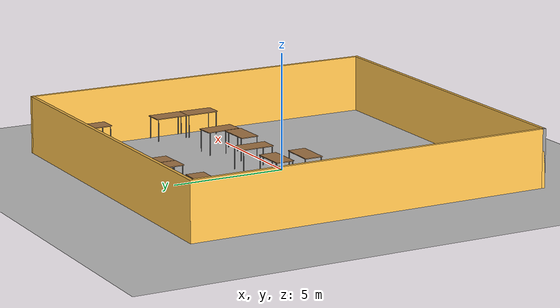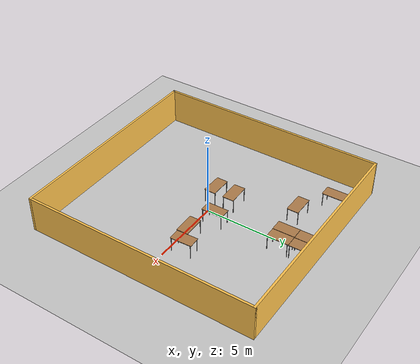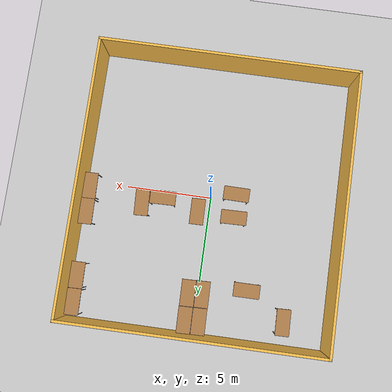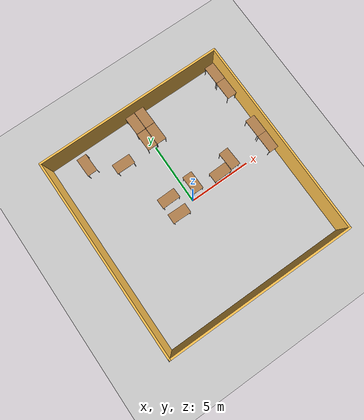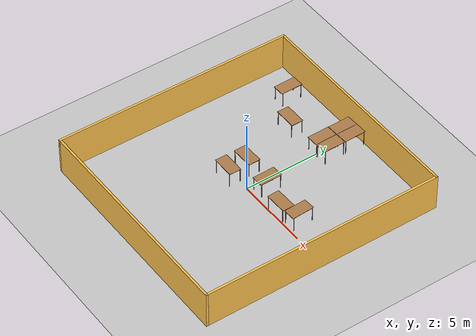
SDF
<sdf version="1.7">
 <world name="default">
  <model name="ground_plane">
   <static>1</static>
   <link name="link">
    <collision name="collision">
     <geometry><plane><normal>0 0 1</normal><size>100 100</size></plane></geometry>
     <surface>
      <contact><collide_bitmask>65535</collide_bitmask></contact>
      <friction><ode><mu>100</mu><mu2>50</mu2></ode></friction>
     </surface>
    </collision>
    <visual name="visual">
     <cast_shadows>0</cast_shadows>
     <geometry><plane><normal>0 0 1</normal><size>100 100</size></plane></geometry>
     <material>
      <script><uri>file://media/materials/scripts/gazebo.material</uri><name>Gazebo/Grey</name></script>
     </material>
    </visual>
   </link>
  </model>
  <model name="RRC">
   <link name="Wall_0">
    <collision name="Wall_0_Collision">
     <geometry><box><size>16.15 0.15 2.5</size></box></geometry>
     <pose>0 0 1.25 0 -0 0</pose>
    </collision>
    <visual name="Wall_0_Visual">
     <pose>0 0 1.25 0 -0 0</pose>
     <geometry><box><size>16.15 0.15 2.5</size></box></geometry>
     <material>
      <script><uri>file://media/materials/scripts/gazebo.material</uri><name>Gazebo/Grey</name></script>
      <ambient>1 0.764706 0.305882 1</ambient>
     </material>
     <meta><layer>0</layer></meta>
    </visual>
    <pose>-7.5 0 0 0 -0 1.5708</pose>
   </link>
   <link name="Wall_1">
    <collision name="Wall_1_Collision">
     <geometry><box><size>15.15 0.15 2.5</size></box></geometry>
     <pose>0 0 1.25 0 -0 0</pose>
    </collision>
    <visual name="Wall_1_Visual">
     <pose>0 0 1.25 0 -0 0</pose>
     <geometry><box><size>15.15 0.15 2.5</size></box></geometry>
     <material>
      <script><uri>file://media/materials/scripts/gazebo.material</uri><name>Gazebo/Grey</name></script>
      <ambient>1 0.764706 0.305882 1</ambient>
     </material>
     <meta><layer>0</layer></meta>
    </visual>
    <pose>0 8 0 0 -0 0</pose>
   </link>
   <link name="Wall_2">
    <collision name="Wall_2_Collision">
     <geometry><box><size>16.15 0.15 2.5</size></box></geometry>
     <pose>0 0 1.25 0 -0 0</pose>
    </collision>
    <visual name="Wall_2_Visual">
     <pose>0 0 1.25 0 -0 0</pose>
     <geometry><box><size>16.15 0.15 2.5</size></box></geometry>
     <material>
      <script><uri>file://media/materials/scripts/gazebo.material</uri><name>Gazebo/Grey</name></script>
      <ambient>1 0.764706 0.305882 1</ambient>
     </material>
     <meta><layer>0</layer></meta>
    </visual>
    <pose>7.5 0 0 0 -0 -1.5708</pose>
   </link>
   <link name="Wall_3">
    <collision name="Wall_3_Collision">
     <geometry><box><size>15.15 0.15 2.5</size></box></geometry>
     <pose>0 0 1.25 0 -0 0</pose>
    </collision>
    <visual name="Wall_3_Visual">
     <pose>0 0 1.25 0 -0 0</pose>
     <geometry><box><size>15.15 0.15 2.5</size></box></geometry>
     <material>
      <script><uri>file://media/materials/scripts/gazebo.material</uri><name>Gazebo/Grey</name></script>
      <ambient>1 0.764706 0.305882 1</ambient>
     </material>
     <meta><layer>0</layer></meta>
    </visual>
    <pose>0 -8 0 0 -0 3.14159</pose>
   </link>
   <link name="Wall_4">
    <collision name="Wall_4_Collision">
     <geometry><box><size>0.15 0.15 2.5</size></box></geometry>
     <pose>0 0 1.25 0 -0 0</pose>
    </collision>
    <visual name="Wall_4_Visual">
     <pose>0 0 1.25 0 -0 0</pose>
     <geometry><box><size>0.15 0.15 2.5</size></box></geometry>
     <material>
      <script><uri>file://media/materials/scripts/gazebo.material</uri><name>Gazebo/Grey</name></script>
      <ambient>1 1 1 1</ambient>
     </material>
     <meta><layer>0</layer></meta>
    </visual>
    <pose>-7.5 -8 0 0 -0 0</pose>
   </link>
   <static>1</static>
  </model>
  <model name="table_clone_0">
   <static>1</static>
   <link name="link">
    <collision name="surface">
     <pose>0 0 1 0 -0 0</pose>
     <geometry><box><size>1.5 0.8 0.03</size></box></geometry>
     <surface><friction><ode><mu>0.6</mu><mu2>0.6</mu2></ode></friction></surface>
    </collision>
    <visual name="visual1">
     <pose>0 0 1 0 -0 0</pose>
     <geometry><box><size>1.5 0.8 0.03</size></box></geometry>
     <material>
      <script><uri>file://media/materials/scripts/gazebo.material</uri><name>Gazebo/Wood</name></script>
     </material>
    </visual>
    <collision name="front_left_leg">
     <pose>0.68 0.38 0.5 0 -0 0</pose>
     <geometry><cylinder><radius>0.02</radius><length>1</length></cylinder></geometry>
    </collision>
    <visual name="front_left_leg">
     <pose>0.68 0.38 0.5 0 -0 0</pose>
     <geometry><cylinder><radius>0.02</radius><length>1</length></cylinder></geometry>
     <material>
      <script><uri>file://media/materials/scripts/gazebo.material</uri><name>Gazebo/Grey</name></script>
     </material>
    </visual>
    <collision name="front_right_leg">
     <pose>0.68 -0.38 0.5 0 -0 0</pose>
     <geometry><cylinder><radius>0.02</radius><length>1</length></cylinder></geometry>
    </collision>
    <visual name="front_right_leg">
     <pose>0.68 -0.38 0.5 0 -0 0</pose>
     <geometry><cylinder><radius>0.02</radius><length>1</length></cylinder></geometry>
     <material>
      <script><uri>file://media/materials/scripts/gazebo.material</uri><name>Gazebo/Grey</name></script>
     </material>
    </visual>
    <collision name="back_right_leg">
     <pose>-0.68 -0.38 0.5 0 -0 0</pose>
     <geometry><cylinder><radius>0.02</radius><length>1</length></cylinder></geometry>
    </collision>
    <visual name="back_right_leg">
     <pose>-0.68 -0.38 0.5 0 -0 0</pose>
     <geometry><cylinder><radius>0.02</radius><length>1</length></cylinder></geometry>
     <material>
      <script><uri>file://media/materials/scripts/gazebo.material</uri><name>Gazebo/Grey</name></script>
     </material>
    </visual>
    <collision name="back_left_leg">
     <pose>-0.68 0.38 0.5 0 -0 0</pose>
     <geometry><cylinder><radius>0.02</radius><length>1</length></cylinder></geometry>
    </collision>
    <visual name="back_left_leg">
     <pose>-0.68 0.38 0.5 0 -0 0</pose>
     <geometry><cylinder><radius>0.02</radius><length>1</length></cylinder></geometry>
     <material>
      <script><uri>file://media/materials/scripts/gazebo.material</uri><name>Gazebo/Grey</name></script>
     </material>
    </visual>
   </link>
   <pose>-2.72057 5.0711 0 0 -0 0</pose>
  </model>
  <model name="table_clone_0_clone_0">
   <static>1</static>
   <link name="link">
    <collision name="surface">
     <pose>0 0 1 0 -0 0</pose>
     <geometry><box><size>1.5 0.8 0.03</size></box></geometry>
     <surface><friction><ode><mu>0.6</mu><mu2>0.6</mu2></ode></friction></surface>
    </collision>
    <visual name="visual1">
     <pose>0 0 1 0 -0 0</pose>
     <geometry><box><size>1.5 0.8 0.03</size></box></geometry>
     <material>
      <script><uri>file://media/materials/scripts/gazebo.material</uri><name>Gazebo/Wood</name></script>
     </material>
    </visual>
    <collision name="front_left_leg">
     <pose>0.68 0.38 0.5 0 -0 0</pose>
     <geometry><cylinder><radius>0.02</radius><length>1</length></cylinder></geometry>
    </collision>
    <visual name="front_left_leg">
     <pose>0.68 0.38 0.5 0 -0 0</pose>
     <geometry><cylinder><radius>0.02</radius><length>1</length></cylinder></geometry>
     <material>
      <script><uri>file://media/materials/scripts/gazebo.material</uri><name>Gazebo/Grey</name></script>
     </material>
    </visual>
    <collision name="front_right_leg">
     <pose>0.68 -0.38 0.5 0 -0 0</pose>
     <geometry><cylinder><radius>0.02</radius><length>1</length></cylinder></geometry>
    </collision>
    <visual name="front_right_leg">
     <pose>0.68 -0.38 0.5 0 -0 0</pose>
     <geometry><cylinder><radius>0.02</radius><length>1</length></cylinder></geometry>
     <material>
      <script><uri>file://media/materials/scripts/gazebo.material</uri><name>Gazebo/Grey</name></script>
     </material>
    </visual>
    <collision name="back_right_leg">
     <pose>-0.68 -0.38 0.5 0 -0 0</pose>
     <geometry><cylinder><radius>0.02</radius><length>1</length></cylinder></geometry>
    </collision>
    <visual name="back_right_leg">
     <pose>-0.68 -0.38 0.5 0 -0 0</pose>
     <geometry><cylinder><radius>0.02</radius><length>1</length></cylinder></geometry>
     <material>
      <script><uri>file://media/materials/scripts/gazebo.material</uri><name>Gazebo/Grey</name></script>
     </material>
    </visual>
    <collision name="back_left_leg">
     <pose>-0.68 0.38 0.5 0 -0 0</pose>
     <geometry><cylinder><radius>0.02</radius><length>1</length></cylinder></geometry>
    </collision>
    <visual name="back_left_leg">
     <pose>-0.68 0.38 0.5 0 -0 0</pose>
     <geometry><cylinder><radius>0.02</radius><length>1</length></cylinder></geometry>
     <material>
      <script><uri>file://media/materials/scripts/gazebo.material</uri><name>Gazebo/Grey</name></script>
     </material>
    </visual>
   </link>
   <pose>-4.97262 6.55188 0 0 -0 1.58908</pose>
  </model>
  <model name="table_clone_0_clone_clone">
   <static>1</static>
   <link name="link">
    <collision name="surface">
     <pose>0 0 1 0 -0 0</pose>
     <geometry><box><size>1.5 0.8 0.03</size></box></geometry>
     <surface><friction><ode><mu>0.6</mu><mu2>0.6</mu2></ode></friction></surface>
    </collision>
    <visual name="visual1">
     <pose>0 0 1 0 -0 0</pose>
     <geometry><box><size>1.5 0.8 0.03</size></box></geometry>
     <material>
      <script><uri>file://media/materials/scripts/gazebo.material</uri><name>Gazebo/Wood</name></script>
     </material>
    </visual>
    <collision name="front_left_leg">
     <pose>0.68 0.38 0.5 0 -0 0</pose>
     <geometry><cylinder><radius>0.02</radius><length>1</length></cylinder></geometry>
    </collision>
    <visual name="front_left_leg">
     <pose>0.68 0.38 0.5 0 -0 0</pose>
     <geometry><cylinder><radius>0.02</radius><length>1</length></cylinder></geometry>
     <material>
      <script><uri>file://media/materials/scripts/gazebo.material</uri><name>Gazebo/Grey</name></script>
     </material>
    </visual>
    <collision name="front_right_leg">
     <pose>0.68 -0.38 0.5 0 -0 0</pose>
     <geometry><cylinder><radius>0.02</radius><length>1</length></cylinder></geometry>
    </collision>
    <visual name="front_right_leg">
     <pose>0.68 -0.38 0.5 0 -0 0</pose>
     <geometry><cylinder><radius>0.02</radius><length>1</length></cylinder></geometry>
     <material>
      <script><uri>file://media/materials/scripts/gazebo.material</uri><name>Gazebo/Grey</name></script>
     </material>
    </visual>
    <collision name="back_right_leg">
     <pose>-0.68 -0.38 0.5 0 -0 0</pose>
     <geometry><cylinder><radius>0.02</radius><length>1</length></cylinder></geometry>
    </collision>
    <visual name="back_right_leg">
     <pose>-0.68 -0.38 0.5 0 -0 0</pose>
     <geometry><cylinder><radius>0.02</radius><length>1</length></cylinder></geometry>
     <material>
      <script><uri>file://media/materials/scripts/gazebo.material</uri><name>Gazebo/Grey</name></script>
     </material>
    </visual>
    <collision name="back_left_leg">
     <pose>-0.68 0.38 0.5 0 -0 0</pose>
     <geometry><cylinder><radius>0.02</radius><length>1</length></cylinder></geometry>
    </collision>
    <visual name="back_left_leg">
     <pose>-0.68 0.38 0.5 0 -0 0</pose>
     <geometry><cylinder><radius>0.02</radius><length>1</length></cylinder></geometry>
     <material>
      <script><uri>file://media/materials/scripts/gazebo.material</uri><name>Gazebo/Grey</name></script>
     </material>
    </visual>
   </link>
   <pose>-0.26541 7.13607 0 0 -0 1.58908</pose>
  </model>
  <model name="table_clone_0_clone_clone_0">
   <static>1</static>
   <link name="link">
    <collision name="surface">
     <pose>0 0 1 0 -0 0</pose>
     <geometry><box><size>1.5 0.8 0.03</size></box></geometry>
     <surface><friction><ode><mu>0.6</mu><mu2>0.6</mu2></ode></friction></surface>
    </collision>
    <visual name="visual1">
     <pose>0 0 1 0 -0 0</pose>
     <geometry><box><size>1.5 0.8 0.03</size></box></geometry>
     <material>
      <script><uri>file://media/materials/scripts/gazebo.material</uri><name>Gazebo/Wood</name></script>
     </material>
    </visual>
    <collision name="front_left_leg">
     <pose>0.68 0.38 0.5 0 -0 0</pose>
     <geometry><cylinder><radius>0.02</radius><length>1</length></cylinder></geometry>
    </collision>
    <visual name="front_left_leg">
     <pose>0.68 0.38 0.5 0 -0 0</pose>
     <geometry><cylinder><radius>0.02</radius><length>1</length></cylinder></geometry>
     <material>
      <script><uri>file://media/materials/scripts/gazebo.material</uri><name>Gazebo/Grey</name></script>
     </material>
    </visual>
    <collision name="front_right_leg">
     <pose>0.68 -0.38 0.5 0 -0 0</pose>
     <geometry><cylinder><radius>0.02</radius><length>1</length></cylinder></geometry>
    </collision>
    <visual name="front_right_leg">
     <pose>0.68 -0.38 0.5 0 -0 0</pose>
     <geometry><cylinder><radius>0.02</radius><length>1</length></cylinder></geometry>
     <material>
      <script><uri>file://media/materials/scripts/gazebo.material</uri><name>Gazebo/Grey</name></script>
     </material>
    </visual>
    <collision name="back_right_leg">
     <pose>-0.68 -0.38 0.5 0 -0 0</pose>
     <geometry><cylinder><radius>0.02</radius><length>1</length></cylinder></geometry>
    </collision>
    <visual name="back_right_leg">
     <pose>-0.68 -0.38 0.5 0 -0 0</pose>
     <geometry><cylinder><radius>0.02</radius><length>1</length></cylinder></geometry>
     <material>
      <script><uri>file://media/materials/scripts/gazebo.material</uri><name>Gazebo/Grey</name></script>
     </material>
    </visual>
    <collision name="back_left_leg">
     <pose>-0.68 0.38 0.5 0 -0 0</pose>
     <geometry><cylinder><radius>0.02</radius><length>1</length></cylinder></geometry>
    </collision>
    <visual name="back_left_leg">
     <pose>-0.68 0.38 0.5 0 -0 0</pose>
     <geometry><cylinder><radius>0.02</radius><length>1</length></cylinder></geometry>
     <material>
      <script><uri>file://media/materials/scripts/gazebo.material</uri><name>Gazebo/Grey</name></script>
     </material>
    </visual>
   </link>
   <pose>-0.253273 5.61577 0 0 -0 1.58908</pose>
  </model>
  <model name="table_clone_0_clone_clone_clone">
   <static>1</static>
   <link name="link">
    <collision name="surface">
     <pose>0 0 1 0 -0 0</pose>
     <geometry><box><size>1.5 0.8 0.03</size></box></geometry>
     <surface><friction><ode><mu>0.6</mu><mu2>0.6</mu2></ode></friction></surface>
    </collision>
    <visual name="visual1">
     <pose>0 0 1 0 -0 0</pose>
     <geometry><box><size>1.5 0.8 0.03</size></box></geometry>
     <material>
      <script><uri>file://media/materials/scripts/gazebo.material</uri><name>Gazebo/Wood</name></script>
     </material>
    </visual>
    <collision name="front_left_leg">
     <pose>0.68 0.38 0.5 0 -0 0</pose>
     <geometry><cylinder><radius>0.02</radius><length>1</length></cylinder></geometry>
    </collision>
    <visual name="front_left_leg">
     <pose>0.68 0.38 0.5 0 -0 0</pose>
     <geometry><cylinder><radius>0.02</radius><length>1</length></cylinder></geometry>
     <material>
      <script><uri>file://media/materials/scripts/gazebo.material</uri><name>Gazebo/Grey</name></script>
     </material>
    </visual>
    <collision name="front_right_leg">
     <pose>0.68 -0.38 0.5 0 -0 0</pose>
     <geometry><cylinder><radius>0.02</radius><length>1</length></cylinder></geometry>
    </collision>
    <visual name="front_right_leg">
     <pose>0.68 -0.38 0.5 0 -0 0</pose>
     <geometry><cylinder><radius>0.02</radius><length>1</length></cylinder></geometry>
     <material>
      <script><uri>file://media/materials/scripts/gazebo.material</uri><name>Gazebo/Grey</name></script>
     </material>
    </visual>
    <collision name="back_right_leg">
     <pose>-0.68 -0.38 0.5 0 -0 0</pose>
     <geometry><cylinder><radius>0.02</radius><length>1</length></cylinder></geometry>
    </collision>
    <visual name="back_right_leg">
     <pose>-0.68 -0.38 0.5 0 -0 0</pose>
     <geometry><cylinder><radius>0.02</radius><length>1</length></cylinder></geometry>
     <material>
      <script><uri>file://media/materials/scripts/gazebo.material</uri><name>Gazebo/Grey</name></script>
     </material>
    </visual>
    <collision name="back_left_leg">
     <pose>-0.68 0.38 0.5 0 -0 0</pose>
     <geometry><cylinder><radius>0.02</radius><length>1</length></cylinder></geometry>
    </collision>
    <visual name="back_left_leg">
     <pose>-0.68 0.38 0.5 0 -0 0</pose>
     <geometry><cylinder><radius>0.02</radius><length>1</length></cylinder></geometry>
     <material>
      <script><uri>file://media/materials/scripts/gazebo.material</uri><name>Gazebo/Grey</name></script>
     </material>
    </visual>
   </link>
   <pose>0.548202 7.15943 0 0 -0 1.58908</pose>
  </model>
  <model name="table_clone_0_clone_clone_clone_0">
   <static>1</static>
   <link name="link">
    <collision name="surface">
     <pose>0 0 1 0 -0 0</pose>
     <geometry><box><size>1.5 0.8 0.03</size></box></geometry>
     <surface><friction><ode><mu>0.6</mu><mu2>0.6</mu2></ode></friction></surface>
    </collision>
    <visual name="visual1">
     <pose>0 0 1 0 -0 0</pose>
     <geometry><box><size>1.5 0.8 0.03</size></box></geometry>
     <material>
      <script><uri>file://media/materials/scripts/gazebo.material</uri><name>Gazebo/Wood</name></script>
     </material>
    </visual>
    <collision name="front_left_leg">
     <pose>0.68 0.38 0.5 0 -0 0</pose>
     <geometry><cylinder><radius>0.02</radius><length>1</length></cylinder></geometry>
    </collision>
    <visual name="front_left_leg">
     <pose>0.68 0.38 0.5 0 -0 0</pose>
     <geometry><cylinder><radius>0.02</radius><length>1</length></cylinder></geometry>
     <material>
      <script><uri>file://media/materials/scripts/gazebo.material</uri><name>Gazebo/Grey</name></script>
     </material>
    </visual>
    <collision name="front_right_leg">
     <pose>0.68 -0.38 0.5 0 -0 0</pose>
     <geometry><cylinder><radius>0.02</radius><length>1</length></cylinder></geometry>
    </collision>
    <visual name="front_right_leg">
     <pose>0.68 -0.38 0.5 0 -0 0</pose>
     <geometry><cylinder><radius>0.02</radius><length>1</length></cylinder></geometry>
     <material>
      <script><uri>file://media/materials/scripts/gazebo.material</uri><name>Gazebo/Grey</name></script>
     </material>
    </visual>
    <collision name="back_right_leg">
     <pose>-0.68 -0.38 0.5 0 -0 0</pose>
     <geometry><cylinder><radius>0.02</radius><length>1</length></cylinder></geometry>
    </collision>
    <visual name="back_right_leg">
     <pose>-0.68 -0.38 0.5 0 -0 0</pose>
     <geometry><cylinder><radius>0.02</radius><length>1</length></cylinder></geometry>
     <material>
      <script><uri>file://media/materials/scripts/gazebo.material</uri><name>Gazebo/Grey</name></script>
     </material>
    </visual>
    <collision name="back_left_leg">
     <pose>-0.68 0.38 0.5 0 -0 0</pose>
     <geometry><cylinder><radius>0.02</radius><length>1</length></cylinder></geometry>
    </collision>
    <visual name="back_left_leg">
     <pose>-0.68 0.38 0.5 0 -0 0</pose>
     <geometry><cylinder><radius>0.02</radius><length>1</length></cylinder></geometry>
     <material>
      <script><uri>file://media/materials/scripts/gazebo.material</uri><name>Gazebo/Grey</name></script>
     </material>
    </visual>
   </link>
   <pose>0.563907 5.64338 0 0 -0 1.58908</pose>
  </model>
  <model name="table_clone_0_clone_1">
   <static>1</static>
   <link name="link">
    <collision name="surface">
     <pose>0 0 1 0 -0 0</pose>
     <geometry><box><size>1.5 0.8 0.03</size></box></geometry>
     <surface><friction><ode><mu>0.6</mu><mu2>0.6</mu2></ode></friction></surface>
    </collision>
    <visual name="visual1">
     <pose>0 0 1 0 -0 0</pose>
     <geometry><box><size>1.5 0.8 0.03</size></box></geometry>
     <material>
      <script><uri>file://media/materials/scripts/gazebo.material</uri><name>Gazebo/Wood</name></script>
     </material>
    </visual>
    <collision name="front_left_leg">
     <pose>0.68 0.38 0.5 0 -0 0</pose>
     <geometry><cylinder><radius>0.02</radius><length>1</length></cylinder></geometry>
    </collision>
    <visual name="front_left_leg">
     <pose>0.68 0.38 0.5 0 -0 0</pose>
     <geometry><cylinder><radius>0.02</radius><length>1</length></cylinder></geometry>
     <material>
      <script><uri>file://media/materials/scripts/gazebo.material</uri><name>Gazebo/Grey</name></script>
     </material>
    </visual>
    <collision name="front_right_leg">
     <pose>0.68 -0.38 0.5 0 -0 0</pose>
     <geometry><cylinder><radius>0.02</radius><length>1</length></cylinder></geometry>
    </collision>
    <visual name="front_right_leg">
     <pose>0.68 -0.38 0.5 0 -0 0</pose>
     <geometry><cylinder><radius>0.02</radius><length>1</length></cylinder></geometry>
     <material>
      <script><uri>file://media/materials/scripts/gazebo.material</uri><name>Gazebo/Grey</name></script>
     </material>
    </visual>
    <collision name="back_right_leg">
     <pose>-0.68 -0.38 0.5 0 -0 0</pose>
     <geometry><cylinder><radius>0.02</radius><length>1</length></cylinder></geometry>
    </collision>
    <visual name="back_right_leg">
     <pose>-0.68 -0.38 0.5 0 -0 0</pose>
     <geometry><cylinder><radius>0.02</radius><length>1</length></cylinder></geometry>
     <material>
      <script><uri>file://media/materials/scripts/gazebo.material</uri><name>Gazebo/Grey</name></script>
     </material>
    </visual>
    <collision name="back_left_leg">
     <pose>-0.68 0.38 0.5 0 -0 0</pose>
     <geometry><cylinder><radius>0.02</radius><length>1</length></cylinder></geometry>
    </collision>
    <visual name="back_left_leg">
     <pose>-0.68 0.38 0.5 0 -0 0</pose>
     <geometry><cylinder><radius>0.02</radius><length>1</length></cylinder></geometry>
     <material>
      <script><uri>file://media/materials/scripts/gazebo.material</uri><name>Gazebo/Grey</name></script>
     </material>
    </visual>
   </link>
   <pose>6.94327 6.99918 0 0 -0 1.58908</pose>
  </model>
  <model name="table_clone_0_clone_2">
   <static>1</static>
   <link name="link">
    <collision name="surface">
     <pose>0 0 1 0 -0 0</pose>
     <geometry><box><size>1.5 0.8 0.03</size></box></geometry>
     <surface><friction><ode><mu>0.6</mu><mu2>0.6</mu2></ode></friction></surface>
    </collision>
    <visual name="visual1">
     <pose>0 0 1 0 -0 0</pose>
     <geometry><box><size>1.5 0.8 0.03</size></box></geometry>
     <material>
      <script><uri>file://media/materials/scripts/gazebo.material</uri><name>Gazebo/Wood</name></script>
     </material>
    </visual>
    <collision name="front_left_leg">
     <pose>0.68 0.38 0.5 0 -0 0</pose>
     <geometry><cylinder><radius>0.02</radius><length>1</length></cylinder></geometry>
    </collision>
    <visual name="front_left_leg">
     <pose>0.68 0.38 0.5 0 -0 0</pose>
     <geometry><cylinder><radius>0.02</radius><length>1</length></cylinder></geometry>
     <material>
      <script><uri>file://media/materials/scripts/gazebo.material</uri><name>Gazebo/Grey</name></script>
     </material>
    </visual>
    <collision name="front_right_leg">
     <pose>0.68 -0.38 0.5 0 -0 0</pose>
     <geometry><cylinder><radius>0.02</radius><length>1</length></cylinder></geometry>
    </collision>
    <visual name="front_right_leg">
     <pose>0.68 -0.38 0.5 0 -0 0</pose>
     <geometry><cylinder><radius>0.02</radius><length>1</length></cylinder></geometry>
     <material>
      <script><uri>file://media/materials/scripts/gazebo.material</uri><name>Gazebo/Grey</name></script>
     </material>
    </visual>
    <collision name="back_right_leg">
     <pose>-0.68 -0.38 0.5 0 -0 0</pose>
     <geometry><cylinder><radius>0.02</radius><length>1</length></cylinder></geometry>
    </collision>
    <visual name="back_right_leg">
     <pose>-0.68 -0.38 0.5 0 -0 0</pose>
     <geometry><cylinder><radius>0.02</radius><length>1</length></cylinder></geometry>
     <material>
      <script><uri>file://media/materials/scripts/gazebo.material</uri><name>Gazebo/Grey</name></script>
     </material>
    </visual>
    <collision name="back_left_leg">
     <pose>-0.68 0.38 0.5 0 -0 0</pose>
     <geometry><cylinder><radius>0.02</radius><length>1</length></cylinder></geometry>
    </collision>
    <visual name="back_left_leg">
     <pose>-0.68 0.38 0.5 0 -0 0</pose>
     <geometry><cylinder><radius>0.02</radius><length>1</length></cylinder></geometry>
     <material>
      <script><uri>file://media/materials/scripts/gazebo.material</uri><name>Gazebo/Grey</name></script>
     </material>
    </visual>
   </link>
   <pose>6.95814 5.4935 0 0 -0 1.58908</pose>
  </model>
  <model name="table_clone_0_clone_4">
   <static>1</static>
   <link name="link">
    <collision name="surface">
     <pose>0 0 1 0 -0 0</pose>
     <geometry><box><size>1.5 0.8 0.03</size></box></geometry>
     <surface><friction><ode><mu>0.6</mu><mu2>0.6</mu2></ode></friction></surface>
    </collision>
    <visual name="visual1">
     <pose>0 0 1 0 -0 0</pose>
     <geometry><box><size>1.5 0.8 0.03</size></box></geometry>
     <material>
      <script><uri>file://media/materials/scripts/gazebo.material</uri><name>Gazebo/Wood</name></script>
     </material>
    </visual>
    <collision name="front_left_leg">
     <pose>0.68 0.38 0.5 0 -0 0</pose>
     <geometry><cylinder><radius>0.02</radius><length>1</length></cylinder></geometry>
    </collision>
    <visual name="front_left_leg">
     <pose>0.68 0.38 0.5 0 -0 0</pose>
     <geometry><cylinder><radius>0.02</radius><length>1</length></cylinder></geometry>
     <material>
      <script><uri>file://media/materials/scripts/gazebo.material</uri><name>Gazebo/Grey</name></script>
     </material>
    </visual>
    <collision name="front_right_leg">
     <pose>0.68 -0.38 0.5 0 -0 0</pose>
     <geometry><cylinder><radius>0.02</radius><length>1</length></cylinder></geometry>
    </collision>
    <visual name="front_right_leg">
     <pose>0.68 -0.38 0.5 0 -0 0</pose>
     <geometry><cylinder><radius>0.02</radius><length>1</length></cylinder></geometry>
     <material>
      <script><uri>file://media/materials/scripts/gazebo.material</uri><name>Gazebo/Grey</name></script>
     </material>
    </visual>
    <collision name="back_right_leg">
     <pose>-0.68 -0.38 0.5 0 -0 0</pose>
     <geometry><cylinder><radius>0.02</radius><length>1</length></cylinder></geometry>
    </collision>
    <visual name="back_right_leg">
     <pose>-0.68 -0.38 0.5 0 -0 0</pose>
     <geometry><cylinder><radius>0.02</radius><length>1</length></cylinder></geometry>
     <material>
      <script><uri>file://media/materials/scripts/gazebo.material</uri><name>Gazebo/Grey</name></script>
     </material>
    </visual>
    <collision name="back_left_leg">
     <pose>-0.68 0.38 0.5 0 -0 0</pose>
     <geometry><cylinder><radius>0.02</radius><length>1</length></cylinder></geometry>
    </collision>
    <visual name="back_left_leg">
     <pose>-0.68 0.38 0.5 0 -0 0</pose>
     <geometry><cylinder><radius>0.02</radius><length>1</length></cylinder></geometry>
     <material>
      <script><uri>file://media/materials/scripts/gazebo.material</uri><name>Gazebo/Grey</name></script>
     </material>
    </visual>
   </link>
   <pose>7.02263 1.81471 0 0 -0 1.58908</pose>
  </model>
  <model name="table_clone_0_clone_5">
   <static>1</static>
   <link name="link">
    <collision name="surface">
     <pose>0 0 1 0 -0 0</pose>
     <geometry><box><size>1.5 0.8 0.03</size></box></geometry>
     <surface><friction><ode><mu>0.6</mu><mu2>0.6</mu2></ode></friction></surface>
    </collision>
    <visual name="visual1">
     <pose>0 0 1 0 -0 0</pose>
     <geometry><box><size>1.5 0.8 0.03</size></box></geometry>
     <material>
      <script><uri>file://media/materials/scripts/gazebo.material</uri><name>Gazebo/Wood</name></script>
     </material>
    </visual>
    <collision name="front_left_leg">
     <pose>0.68 0.38 0.5 0 -0 0</pose>
     <geometry><cylinder><radius>0.02</radius><length>1</length></cylinder></geometry>
    </collision>
    <visual name="front_left_leg">
     <pose>0.68 0.38 0.5 0 -0 0</pose>
     <geometry><cylinder><radius>0.02</radius><length>1</length></cylinder></geometry>
     <material>
      <script><uri>file://media/materials/scripts/gazebo.material</uri><name>Gazebo/Grey</name></script>
     </material>
    </visual>
    <collision name="front_right_leg">
     <pose>0.68 -0.38 0.5 0 -0 0</pose>
     <geometry><cylinder><radius>0.02</radius><length>1</length></cylinder></geometry>
    </collision>
    <visual name="front_right_leg">
     <pose>0.68 -0.38 0.5 0 -0 0</pose>
     <geometry><cylinder><radius>0.02</radius><length>1</length></cylinder></geometry>
     <material>
      <script><uri>file://media/materials/scripts/gazebo.material</uri><name>Gazebo/Grey</name></script>
     </material>
    </visual>
    <collision name="back_right_leg">
     <pose>-0.68 -0.38 0.5 0 -0 0</pose>
     <geometry><cylinder><radius>0.02</radius><length>1</length></cylinder></geometry>
    </collision>
    <visual name="back_right_leg">
     <pose>-0.68 -0.38 0.5 0 -0 0</pose>
     <geometry><cylinder><radius>0.02</radius><length>1</length></cylinder></geometry>
     <material>
      <script><uri>file://media/materials/scripts/gazebo.material</uri><name>Gazebo/Grey</name></script>
     </material>
    </visual>
    <collision name="back_left_leg">
     <pose>-0.68 0.38 0.5 0 -0 0</pose>
     <geometry><cylinder><radius>0.02</radius><length>1</length></cylinder></geometry>
    </collision>
    <visual name="back_left_leg">
     <pose>-0.68 0.38 0.5 0 -0 0</pose>
     <geometry><cylinder><radius>0.02</radius><length>1</length></cylinder></geometry>
     <material>
      <script><uri>file://media/materials/scripts/gazebo.material</uri><name>Gazebo/Grey</name></script>
     </material>
    </visual>
   </link>
   <pose>7.04989 0.31807 0 0 -0 1.58908</pose>
  </model>
  <model name="table_clone_2">
   <static>1</static>
   <link name="link">
    <collision name="surface">
     <pose>0 0 1 0 -0 0</pose>
     <geometry><box><size>1.5 0.8 0.03</size></box></geometry>
     <surface><friction><ode><mu>0.6</mu><mu2>0.6</mu2></ode></friction></surface>
    </collision>
    <visual name="visual1">
     <pose>0 0 1 0 -0 0</pose>
     <geometry><box><size>1.5 0.8 0.03</size></box></geometry>
     <material>
      <script><uri>file://media/materials/scripts/gazebo.material</uri><name>Gazebo/Wood</name></script>
     </material>
    </visual>
    <collision name="front_left_leg">
     <pose>0.68 0.38 0.5 0 -0 0</pose>
     <geometry><cylinder><radius>0.02</radius><length>1</length></cylinder></geometry>
    </collision>
    <visual name="front_left_leg">
     <pose>0.68 0.38 0.5 0 -0 0</pose>
     <geometry><cylinder><radius>0.02</radius><length>1</length></cylinder></geometry>
     <material>
      <script><uri>file://media/materials/scripts/gazebo.material</uri><name>Gazebo/Grey</name></script>
     </material>
    </visual>
    <collision name="front_right_leg">
     <pose>0.68 -0.38 0.5 0 -0 0</pose>
     <geometry><cylinder><radius>0.02</radius><length>1</length></cylinder></geometry>
    </collision>
    <visual name="front_right_leg">
     <pose>0.68 -0.38 0.5 0 -0 0</pose>
     <geometry><cylinder><radius>0.02</radius><length>1</length></cylinder></geometry>
     <material>
      <script><uri>file://media/materials/scripts/gazebo.material</uri><name>Gazebo/Grey</name></script>
     </material>
    </visual>
    <collision name="back_right_leg">
     <pose>-0.68 -0.38 0.5 0 -0 0</pose>
     <geometry><cylinder><radius>0.02</radius><length>1</length></cylinder></geometry>
    </collision>
    <visual name="back_right_leg">
     <pose>-0.68 -0.38 0.5 0 -0 0</pose>
     <geometry><cylinder><radius>0.02</radius><length>1</length></cylinder></geometry>
     <material>
      <script><uri>file://media/materials/scripts/gazebo.material</uri><name>Gazebo/Grey</name></script>
     </material>
    </visual>
    <collision name="back_left_leg">
     <pose>-0.68 0.38 0.5 0 -0 0</pose>
     <geometry><cylinder><radius>0.02</radius><length>1</length></cylinder></geometry>
    </collision>
    <visual name="back_left_leg">
     <pose>-0.68 0.38 0.5 0 -0 0</pose>
     <geometry><cylinder><radius>0.02</radius><length>1</length></cylinder></geometry>
     <material>
      <script><uri>file://media/materials/scripts/gazebo.material</uri><name>Gazebo/Grey</name></script>
     </material>
    </visual>
   </link>
   <pose>-1.44002 -0.317905 0 0 0 -0.010966</pose>
  </model>
  <model name="table_clone_2_clone">
   <static>1</static>
   <link name="link">
    <collision name="surface">
     <pose>0 0 1 0 -0 0</pose>
     <geometry><box><size>1.5 0.8 0.03</size></box></geometry>
     <surface><friction><ode><mu>0.6</mu><mu2>0.6</mu2></ode></friction></surface>
    </collision>
    <visual name="visual1">
     <pose>0 0 1 0 -0 0</pose>
     <geometry><box><size>1.5 0.8 0.03</size></box></geometry>
     <material>
      <script><uri>file://media/materials/scripts/gazebo.material</uri><name>Gazebo/Wood</name></script>
     </material>
    </visual>
    <collision name="front_left_leg">
     <pose>0.68 0.38 0.5 0 -0 0</pose>
     <geometry><cylinder><radius>0.02</radius><length>1</length></cylinder></geometry>
    </collision>
    <visual name="front_left_leg">
     <pose>0.68 0.38 0.5 0 -0 0</pose>
     <geometry><cylinder><radius>0.02</radius><length>1</length></cylinder></geometry>
     <material>
      <script><uri>file://media/materials/scripts/gazebo.material</uri><name>Gazebo/Grey</name></script>
     </material>
    </visual>
    <collision name="front_right_leg">
     <pose>0.68 -0.38 0.5 0 -0 0</pose>
     <geometry><cylinder><radius>0.02</radius><length>1</length></cylinder></geometry>
    </collision>
    <visual name="front_right_leg">
     <pose>0.68 -0.38 0.5 0 -0 0</pose>
     <geometry><cylinder><radius>0.02</radius><length>1</length></cylinder></geometry>
     <material>
      <script><uri>file://media/materials/scripts/gazebo.material</uri><name>Gazebo/Grey</name></script>
     </material>
    </visual>
    <collision name="back_right_leg">
     <pose>-0.68 -0.38 0.5 0 -0 0</pose>
     <geometry><cylinder><radius>0.02</radius><length>1</length></cylinder></geometry>
    </collision>
    <visual name="back_right_leg">
     <pose>-0.68 -0.38 0.5 0 -0 0</pose>
     <geometry><cylinder><radius>0.02</radius><length>1</length></cylinder></geometry>
     <material>
      <script><uri>file://media/materials/scripts/gazebo.material</uri><name>Gazebo/Grey</name></script>
     </material>
    </visual>
    <collision name="back_left_leg">
     <pose>-0.68 0.38 0.5 0 -0 0</pose>
     <geometry><cylinder><radius>0.02</radius><length>1</length></cylinder></geometry>
    </collision>
    <visual name="back_left_leg">
     <pose>-0.68 0.38 0.5 0 -0 0</pose>
     <geometry><cylinder><radius>0.02</radius><length>1</length></cylinder></geometry>
     <material>
      <script><uri>file://media/materials/scripts/gazebo.material</uri><name>Gazebo/Grey</name></script>
     </material>
    </visual>
   </link>
   <pose>-1.45721 1.04367 0 0 -0 0.020412</pose>
  </model>
  <model name="table_clone_2_clone_clone">
   <static>1</static>
   <link name="link">
    <collision name="surface">
     <pose>0 0 1 0 -0 0</pose>
     <geometry><box><size>1.5 0.8 0.03</size></box></geometry>
     <surface><friction><ode><mu>0.6</mu><mu2>0.6</mu2></ode></friction></surface>
    </collision>
    <visual name="visual1">
     <pose>0 0 1 0 -0 0</pose>
     <geometry><box><size>1.5 0.8 0.03</size></box></geometry>
     <material>
      <script><uri>file://media/materials/scripts/gazebo.material</uri><name>Gazebo/Wood</name></script>
     </material>
    </visual>
    <collision name="front_left_leg">
     <pose>0.68 0.38 0.5 0 -0 0</pose>
     <geometry><cylinder><radius>0.02</radius><length>1</length></cylinder></geometry>
    </collision>
    <visual name="front_left_leg">
     <pose>0.68 0.38 0.5 0 -0 0</pose>
     <geometry><cylinder><radius>0.02</radius><length>1</length></cylinder></geometry>
     <material>
      <script><uri>file://media/materials/scripts/gazebo.material</uri><name>Gazebo/Grey</name></script>
     </material>
    </visual>
    <collision name="front_right_leg">
     <pose>0.68 -0.38 0.5 0 -0 0</pose>
     <geometry><cylinder><radius>0.02</radius><length>1</length></cylinder></geometry>
    </collision>
    <visual name="front_right_leg">
     <pose>0.68 -0.38 0.5 0 -0 0</pose>
     <geometry><cylinder><radius>0.02</radius><length>1</length></cylinder></geometry>
     <material>
      <script><uri>file://media/materials/scripts/gazebo.material</uri><name>Gazebo/Grey</name></script>
     </material>
    </visual>
    <collision name="back_right_leg">
     <pose>-0.68 -0.38 0.5 0 -0 0</pose>
     <geometry><cylinder><radius>0.02</radius><length>1</length></cylinder></geometry>
    </collision>
    <visual name="back_right_leg">
     <pose>-0.68 -0.38 0.5 0 -0 0</pose>
     <geometry><cylinder><radius>0.02</radius><length>1</length></cylinder></geometry>
     <material>
      <script><uri>file://media/materials/scripts/gazebo.material</uri><name>Gazebo/Grey</name></script>
     </material>
    </visual>
    <collision name="back_left_leg">
     <pose>-0.68 0.38 0.5 0 -0 0</pose>
     <geometry><cylinder><radius>0.02</radius><length>1</length></cylinder></geometry>
    </collision>
    <visual name="back_left_leg">
     <pose>-0.68 0.38 0.5 0 -0 0</pose>
     <geometry><cylinder><radius>0.02</radius><length>1</length></cylinder></geometry>
     <material>
      <script><uri>file://media/materials/scripts/gazebo.material</uri><name>Gazebo/Grey</name></script>
     </material>
    </visual>
   </link>
   <pose>2.75827 0.451191 0 0 -0 0.020412</pose>
  </model>
  <model name="table_clone_2_clone_clone_clone">
   <static>1</static>
   <link name="link">
    <collision name="surface">
     <pose>0 0 1 0 -0 0</pose>
     <geometry><box><size>1.5 0.8 0.03</size></box></geometry>
     <surface><friction><ode><mu>0.6</mu><mu2>0.6</mu2></ode></friction></surface>
    </collision>
    <visual name="visual1">
     <pose>0 0 1 0 -0 0</pose>
     <geometry><box><size>1.5 0.8 0.03</size></box></geometry>
     <material>
      <script><uri>file://media/materials/scripts/gazebo.material</uri><name>Gazebo/Wood</name></script>
     </material>
    </visual>
    <collision name="front_left_leg">
     <pose>0.68 0.38 0.5 0 -0 0</pose>
     <geometry><cylinder><radius>0.02</radius><length>1</length></cylinder></geometry>
    </collision>
    <visual name="front_left_leg">
     <pose>0.68 0.38 0.5 0 -0 0</pose>
     <geometry><cylinder><radius>0.02</radius><length>1</length></cylinder></geometry>
     <material>
      <script><uri>file://media/materials/scripts/gazebo.material</uri><name>Gazebo/Grey</name></script>
     </material>
    </visual>
    <collision name="front_right_leg">
     <pose>0.68 -0.38 0.5 0 -0 0</pose>
     <geometry><cylinder><radius>0.02</radius><length>1</length></cylinder></geometry>
    </collision>
    <visual name="front_right_leg">
     <pose>0.68 -0.38 0.5 0 -0 0</pose>
     <geometry><cylinder><radius>0.02</radius><length>1</length></cylinder></geometry>
     <material>
      <script><uri>file://media/materials/scripts/gazebo.material</uri><name>Gazebo/Grey</name></script>
     </material>
    </visual>
    <collision name="back_right_leg">
     <pose>-0.68 -0.38 0.5 0 -0 0</pose>
     <geometry><cylinder><radius>0.02</radius><length>1</length></cylinder></geometry>
    </collision>
    <visual name="back_right_leg">
     <pose>-0.68 -0.38 0.5 0 -0 0</pose>
     <geometry><cylinder><radius>0.02</radius><length>1</length></cylinder></geometry>
     <material>
      <script><uri>file://media/materials/scripts/gazebo.material</uri><name>Gazebo/Grey</name></script>
     </material>
    </visual>
    <collision name="back_left_leg">
     <pose>-0.68 0.38 0.5 0 -0 0</pose>
     <geometry><cylinder><radius>0.02</radius><length>1</length></cylinder></geometry>
    </collision>
    <visual name="back_left_leg">
     <pose>-0.68 0.38 0.5 0 -0 0</pose>
     <geometry><cylinder><radius>0.02</radius><length>1</length></cylinder></geometry>
     <material>
      <script><uri>file://media/materials/scripts/gazebo.material</uri><name>Gazebo/Grey</name></script>
     </material>
    </visual>
   </link>
   <pose>0.664908 0.98672 0 0 0 -1.55798</pose>
  </model>
  <model name="table_clone_3_clone">
   <static>1</static>
   <link name="link">
    <collision name="surface">
     <pose>0 0 1 0 -0 0</pose>
     <geometry><box><size>1.5 0.8 0.03</size></box></geometry>
     <surface><friction><ode><mu>0.6</mu><mu2>0.6</mu2></ode></friction></surface>
    </collision>
    <visual name="visual1">
     <pose>0 0 1 0 -0 0</pose>
     <geometry><box><size>1.5 0.8 0.03</size></box></geometry>
     <material>
      <script><uri>file://media/materials/scripts/gazebo.material</uri><name>Gazebo/Wood</name></script>
     </material>
    </visual>
    <collision name="front_left_leg">
     <pose>0.68 0.38 0.5 0 -0 0</pose>
     <geometry><cylinder><radius>0.02</radius><length>1</length></cylinder></geometry>
    </collision>
    <visual name="front_left_leg">
     <pose>0.68 0.38 0.5 0 -0 0</pose>
     <geometry><cylinder><radius>0.02</radius><length>1</length></cylinder></geometry>
     <material>
      <script><uri>file://media/materials/scripts/gazebo.material</uri><name>Gazebo/Grey</name></script>
     </material>
    </visual>
    <collision name="front_right_leg">
     <pose>0.68 -0.38 0.5 0 -0 0</pose>
     <geometry><cylinder><radius>0.02</radius><length>1</length></cylinder></geometry>
    </collision>
    <visual name="front_right_leg">
     <pose>0.68 -0.38 0.5 0 -0 0</pose>
     <geometry><cylinder><radius>0.02</radius><length>1</length></cylinder></geometry>
     <material>
      <script><uri>file://media/materials/scripts/gazebo.material</uri><name>Gazebo/Grey</name></script>
     </material>
    </visual>
    <collision name="back_right_leg">
     <pose>-0.68 -0.38 0.5 0 -0 0</pose>
     <geometry><cylinder><radius>0.02</radius><length>1</length></cylinder></geometry>
    </collision>
    <visual name="back_right_leg">
     <pose>-0.68 -0.38 0.5 0 -0 0</pose>
     <geometry><cylinder><radius>0.02</radius><length>1</length></cylinder></geometry>
     <material>
      <script><uri>file://media/materials/scripts/gazebo.material</uri><name>Gazebo/Grey</name></script>
     </material>
    </visual>
    <collision name="back_left_leg">
     <pose>-0.68 0.38 0.5 0 -0 0</pose>
     <geometry><cylinder><radius>0.02</radius><length>1</length></cylinder></geometry>
    </collision>
    <visual name="back_left_leg">
     <pose>-0.68 0.38 0.5 0 -0 0</pose>
     <geometry><cylinder><radius>0.02</radius><length>1</length></cylinder></geometry>
     <material>
      <script><uri>file://media/materials/scripts/gazebo.material</uri><name>Gazebo/Grey</name></script>
     </material>
    </visual>
   </link>
   <pose>3.92048 0.901097 0 0 -0 1.61818</pose>
  </model>
  <model name="cardboard_box_0">
   <pose>3.96847 0.977565 0.149 0 -0 0</pose>
   <scale>1 1 1</scale>
   <link name="link">
    <pose>3.96847 0.977565 0.149 0 -0 0</pose>
    <velocity>0 0 0 0 -0 0</velocity>
    <acceleration>0 -1.9e-05 0 0.000128 2e-06 0</acceleration>
    <wrench>1e-06 -3.8e-05 1e-06 0 -0 0</wrench>
   </link>
  </model>
  <model name="cardboard_box_2">
   <pose>-4.88373 2.96722 0.149 0 -0 0</pose>
   <scale>1 1 1</scale>
   <link name="link">
    <pose>-4.88373 2.96722 0.149 0 -0 0</pose>
    <velocity>0 0 0 0 -0 0</velocity>
    <acceleration>0 -1.9e-05 0 0.000128 2e-06 0</acceleration>
    <wrench>1e-06 -3.8e-05 1e-06 0 -0 0</wrench>
   </link>
  </model>
  <model name="cardboard_box_3">
   <pose>-0.0158 3.98725 0.14951 2e-06 -2e-06 -0</pose>
   <scale>1 1 1</scale>
   <link name="link">
    <pose>-0.0158 3.98725 0.14951 2e-06 -2e-06 -0</pose>
    <velocity>0 0 0 0 -0 0</velocity>
    <acceleration>0 1.1e-05 0 -7.2e-05 1e-06 0</acceleration>
    <wrench>0 2.2e-05 0 0 -0 0</wrench>
   </link>
  </model>
 </world>
</sdf>
